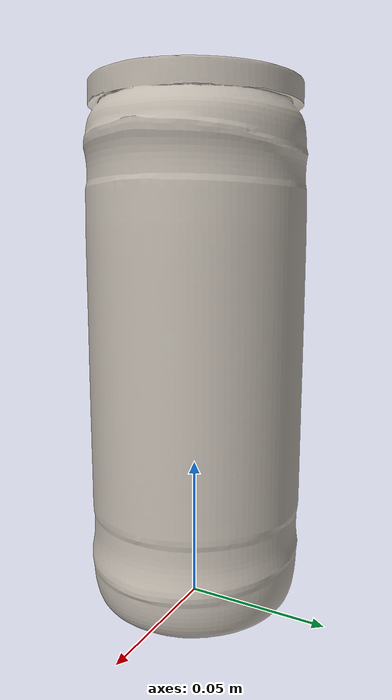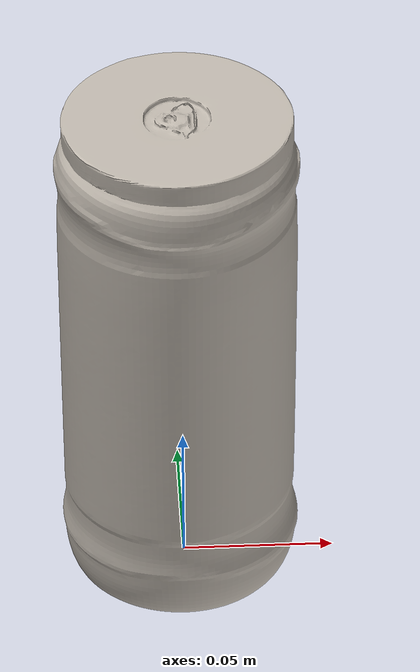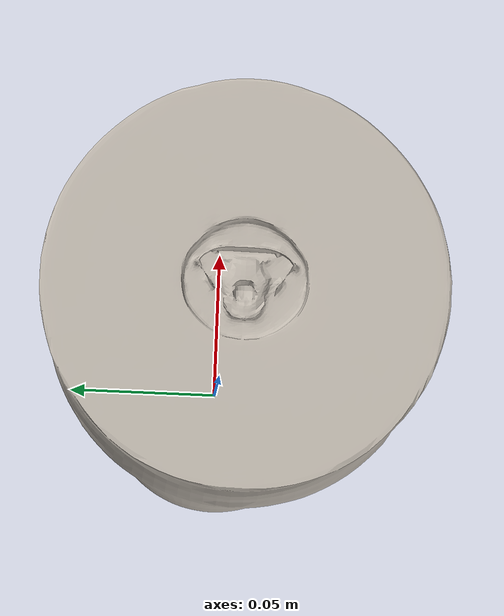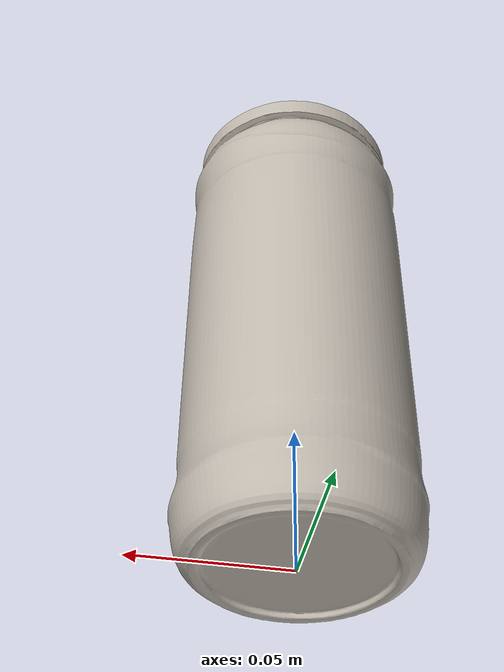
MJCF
<mujoco model="025_chips-tub">
  <asset>
    <mesh name="025_chips_tub_visual" file="025_chips-tub_visual.obj"/>
    <mesh name="025_chips_tub_collision" file="025_chips-tub_collision.stl"/>
    <texture name="025_chips_tub_tex" type="2d" file="025_chips-tub.png"/>
    <material name="025_chips_tub_mat" texture="025_chips_tub_tex"/>
  </asset>
  <worldbody>
    <body name="025_chips-tub" pos="0 0 0">
      <freejoint/>
      <geom type="mesh" mesh="025_chips_tub_visual" material="025_chips_tub_mat"
            mass="0.3835" contype="0" conaffinity="0"/>
      <geom type="mesh" mesh="025_chips_tub_collision" mass="0"
            contype="1" conaffinity="1"
            friction="0.5 .005 0.01"
            rgba="0 0 0 0"/>
    </body>
  </worldbody>
</mujoco>
